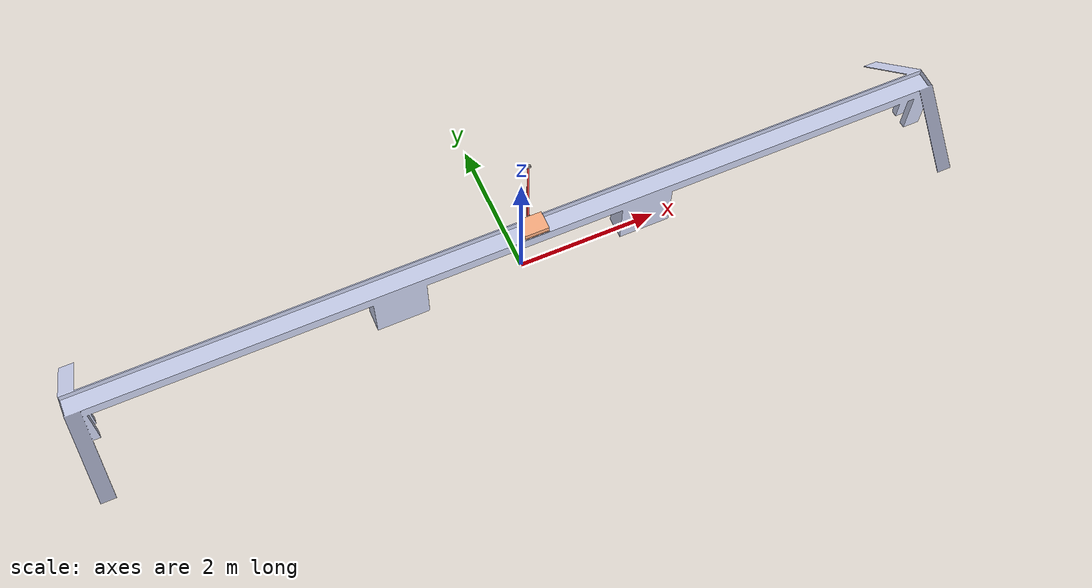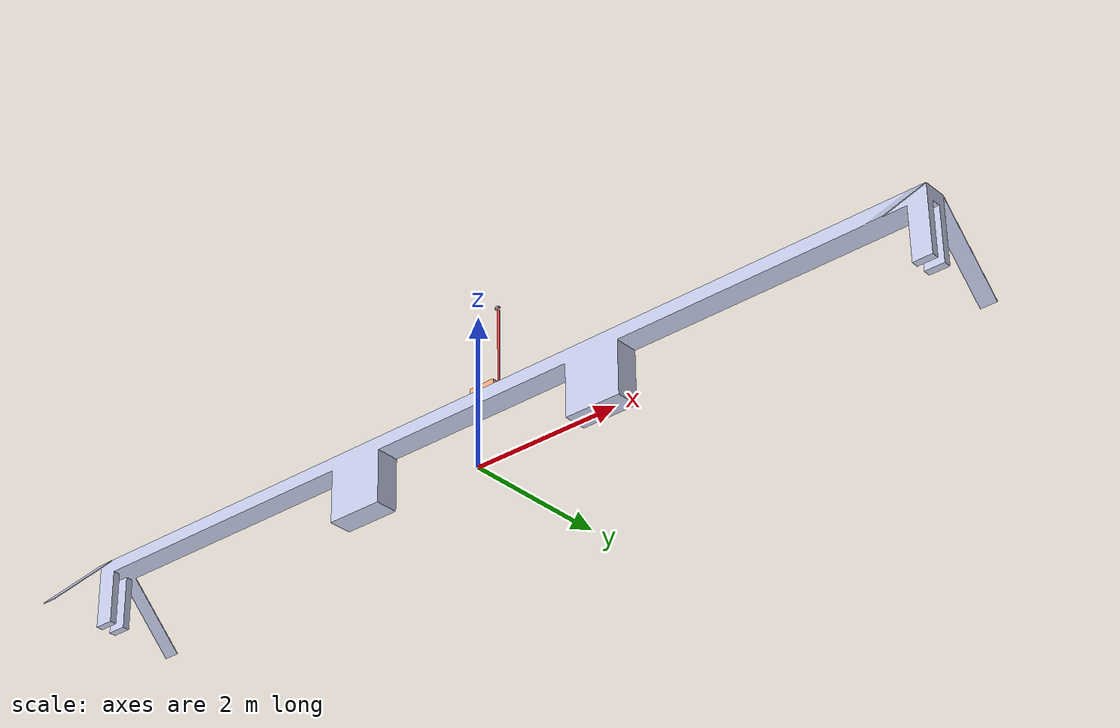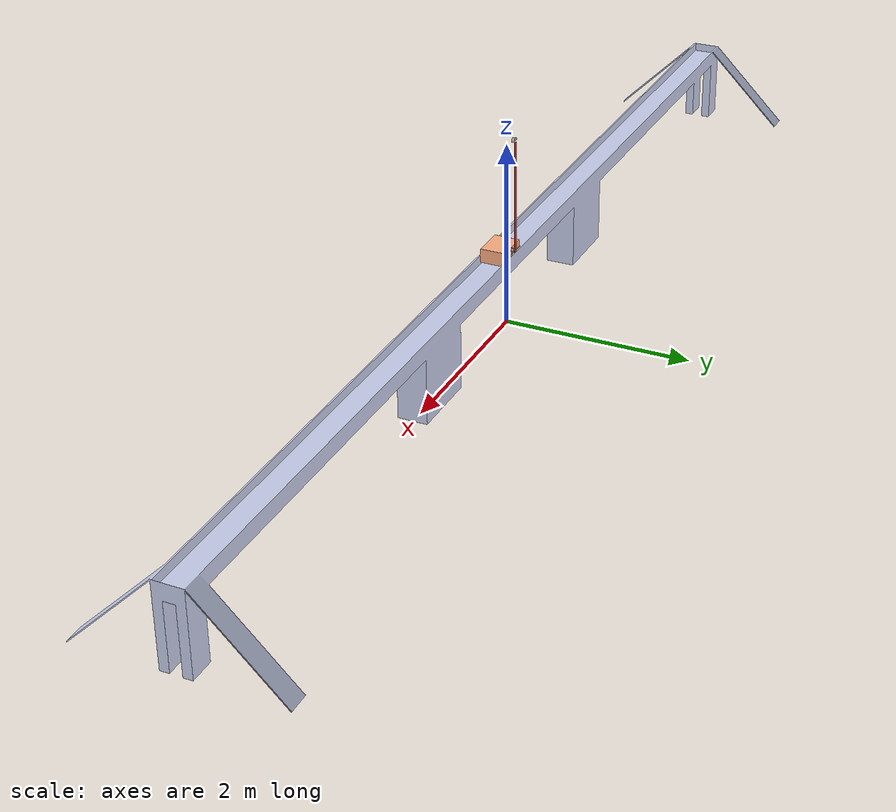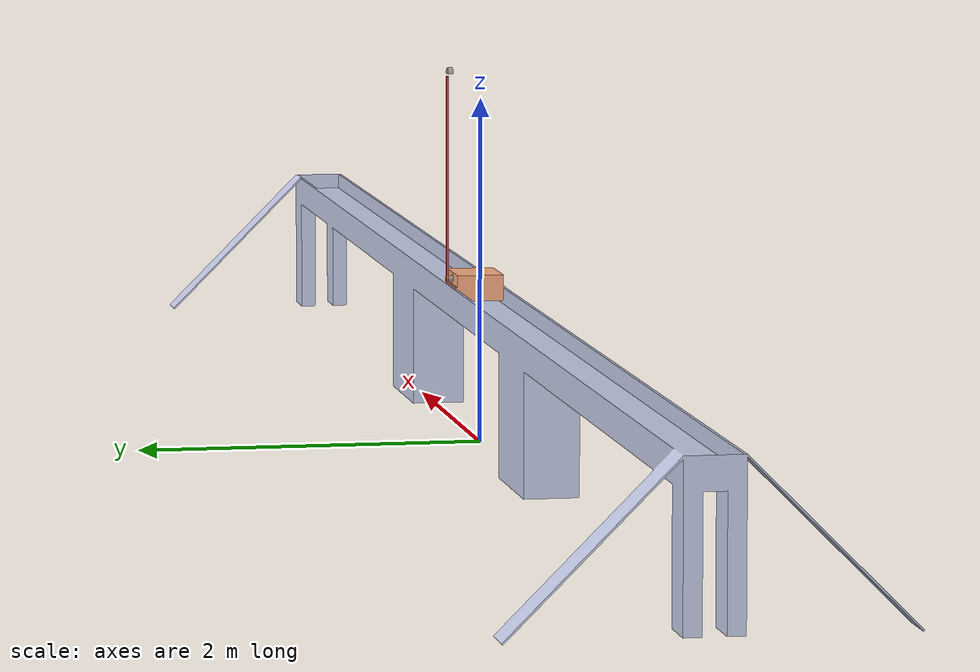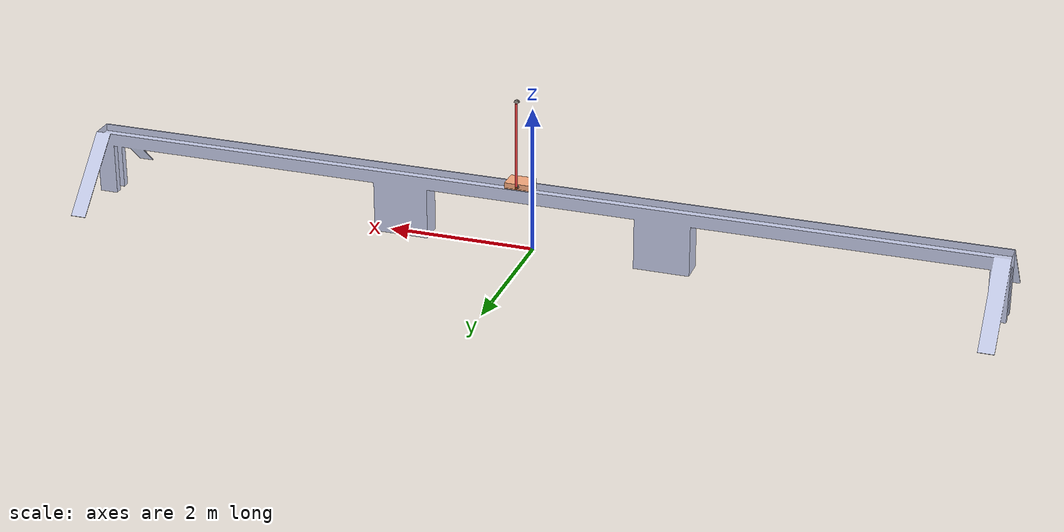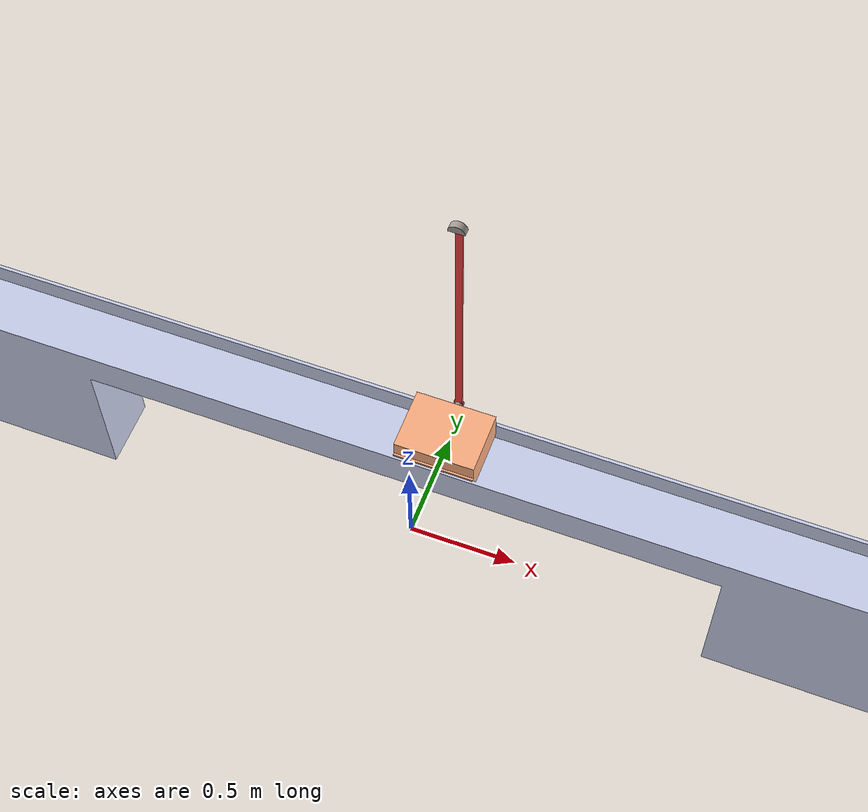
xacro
<?xml version="1.0" encoding="utf-8"?>

<robot
  name="pendulum" xmlns:xacro="http://ros.org/wiki/xacro">
  <xacro:include filename="$(find pendulum_description)/urdf/pendulum_gazebo.xacro" />
  <xacro:include filename="$(find pendulum_description)/urdf/pendulum_ros2_control.xacro" />

  <link name="base_footprint"/>

  <link
    name="base_link">
    <inertial>
      <origin
        xyz="6.36331745104857E-16 -0.226629032258064 -0.5"
        rpy="0 0 1.5708" />
      <mass
        value="135000.625" />
      <inertia
        ixx="120000.66933800235214"
        ixy="-8000.34457950766646E-16"
        ixz="1000.68593437821496E-14"
        iyy="121000.983188541667"
        iyz="-1000.53839894452422E-15"
        izz="128000.712191127352" />
    </inertial>
    <visual>
      <origin
        xyz="0 0 0"
        rpy="0 0 0" />
      <geometry>
        <mesh
          filename="file://$(find pendulum_description)/meshes/base_link.STL" />
      </geometry>
      <material
        name="">
        <color
          rgba="0.792156862745098 0.819607843137255 0.933333333333333 1" />
      </material>
    </visual>
    <collision>
      <origin
        xyz="0 0 0"
        rpy="0 0 0" />
      <geometry>
        <mesh
          filename="file://$(find pendulum_description)/meshes/base_link.STL" />
      </geometry>
    </collision>
  </link>

  <joint name="base_joint" type="fixed">
    <parent link="base_footprint"/>
    <child link="base_link" />
    <origin xyz="0 0 0.8" rpy="0 0 0"/>
  </joint>

  <link
    name="cart_link">
    <inertial>
      <origin
        xyz="0.164307811287998 0.0220987949533505 0.134063268805466"
        rpy="0 0 0" />
      <mass
        value="2.0" />
      <inertia
        ixx="0.0908570873245677"
        ixy="0.000609128603190611"
        ixz="-0.00131456683820482"
        iyy="0.185704807269383"
        iyz="0.000256709228024828"
        izz="0.128763787648094" />
    </inertial>
    <visual>
      <origin
        xyz="0 0 0"
        rpy="0 0 0" />
      <geometry>
        <mesh
          filename="file://$(find pendulum_description)/meshes/cart_link.STL" />
      </geometry>
      <material
        name="">
        <color
          rgba="1 0.690196078431373 0.509803921568627 1" />
      </material>
    </visual>
    <collision>
      <origin
        xyz="0 0 0"
        rpy="0 0 0" />
      <geometry>
        <mesh
          filename="file://$(find pendulum_description)/meshes/cart_link.STL" />
      </geometry>
    </collision>
  </link>
  <joint
    name="cart_joint"
    type="prismatic">
    <origin
      xyz="0 0.135 0.1"
      rpy="1.5708 0 0" />
    <parent
      link="base_link" />
    <child
      link="cart_link" />
    <axis
      xyz="1 0 0" />
    <limit
      lower="-6"
      upper="6"
      effort="10e4"
      velocity="10e3" />
    <dynamics damping='0.000001' friction='0.000001'/>
  </joint>
  <link
    name="wheel_shaft_link">
    <inertial>
      <origin
        xyz="0 -8.02982279374809E-05 0.12"
        rpy="0 0 0" />
      <mass
        value="0.0513755963547227" />
      <inertia
        ixx="0.000248479590131815"
        ixy="5.0821976835258E-21"
        ixz="-6.30936505837719E-21"
        iyy="0.00024849053286373"
        iyz="3.09069487800563E-20"
        izz="2.26317990207106E-07" />
    </inertial>
    <visual>
      <origin
        xyz="0 0 0"
        rpy="0 0 0" />
      <geometry>
        <mesh
          filename="file://$(find pendulum_description)/meshes/wheel_shaft_link.STL" />
      </geometry>
      <material
        name="">
        <color
          rgba="0.529411764705882 0.549019607843137 0.549019607843137 1" />
      </material>
    </visual>
    <collision>
      <origin
        xyz="0 0 0"
        rpy="0 0 0" />
      <geometry>
        <mesh
          filename="file://$(find pendulum_description)/meshes/wheel_shaft_link.STL" />
      </geometry>
    </collision>
  </link>
  <joint
    name="wheel_shaft_joint"
    type="continuous">
    <origin
      xyz="0.16755 -0.04 0.015"
      rpy="0 0 -0.11686" />
    <parent
      link="cart_link" />
    <child
      link="wheel_shaft_link" />
    <axis
      xyz="0 0 1" />
  </joint>
  <link
    name="wheel_link">
    <inertial>
      <origin
        xyz="-2.77555756156289E-17 7.27512519449469E-07 0.02"
        rpy="0 0 0" />
      <mass
        value="0.219522857968325" />
      <inertia
        ixx="0.000279345890325254"
        ixy="-2.03287907341032E-20"
        ixz="9.16740630550692E-20"
        iyy="0.000279345523578527"
        iyz="-2.89498400182015E-19"
        izz="0.000519872498983051" />
    </inertial>
    <visual>
      <origin
        xyz="0 0 0"
        rpy="0 0 0" />
      <geometry>
        <mesh
          filename="file://$(find pendulum_description)/meshes/wheel_link.STL" />
      </geometry>
      <material
        name="">
        <color
          rgba="1 1 1 1" />
      </material>
    </visual>
    <collision>
      <origin
        xyz="0 0 0"
        rpy="0 0 0" />
      <geometry>
        <mesh
          filename="file://$(find pendulum_description)/meshes/wheel_link.STL" />
      </geometry>
    </collision>
  </link>
  <joint
    name="wheel_joint"
    type="fixed">
    <origin
      xyz="0 0 0.1"
      rpy="0 0 0" />
    <parent
      link="wheel_shaft_link" />
    <child
      link="wheel_link" />

  </joint>
  <link
    name="pendulum_shaft_link">
    <inertial>
      <origin
        xyz="0 -9.4628805232283E-05 -0.011847861273337"
        rpy="0 0 -1.57" />
      <mass
        value="0.00274631062675936" />
      <inertia
        ixx="7.16968521355364E-07"
        ixy="1.6082318495927E-13"
        ixz="-1.54635176865287E-13"
        iyy="7.20225194163355E-07"
        iyz="-5.23183126573732E-09"
        izz="3.07208743781879E-07" />
    </inertial>
    <visual>
      <origin
        xyz="0 0 0"
        rpy="0 0 -1.5708" />
      <geometry>
        <mesh
          filename="file://$(find pendulum_description)/meshes/pendulum_shaft_link.STL" />
      </geometry>
      <material
        name="">
        <color
          rgba="0.650980392156863 0.619607843137255 0.588235294117647 1" />
      </material>
    </visual>
    <collision>
      <origin
        xyz="0 0 0"
        rpy="0 0 -1.5708" />
      <geometry>
        <mesh
          filename="file://$(find pendulum_description)/meshes/pendulum_shaft_link.STL" />
      </geometry>
    </collision>
  </link>
  <joint
    name="pendulum_shaft_joint"
    type="continuous">
    <origin
      xyz="0.167545451297984 0.0375 0"
      rpy="0 0 1.5708" />
    <parent
      link="cart_link" />
    <child
      link="pendulum_shaft_link" />
    <axis
      xyz="0 0 1" />
  </joint>
  <link
    name="pendulum_shaft">
    <inertial>
      <origin
        xyz="0.574 -0.0188 0"
        rpy="0 0 -1.57" />
      <mass
        value="0.031" />
      <inertia
        ixx="0.0030749"
        ixy="0.0014591"
        ixz="-1.4031E-18"
        iyy="0.00069572"
        iyz="2.9593E-18"
        izz="0.00377" />
    </inertial>
    <visual>
      <origin
        xyz="0.574 -0.0188 0"
        rpy="0 0 -1.57" />
      <geometry>
        <mesh
          filename="file://$(find pendulum_description)/meshes/pendulum_shaft.STL" />
      </geometry>
      <material
        name="">
        <color
          rgba="0.968627450980392 0.258823529411765 0.258823529411765 1" />
      </material>
    </visual>
    <collision>
      <origin
        xyz="0.574 -0.0188 0"
        rpy="0 0 -1.57" />
      <geometry>
        <mesh
          filename="file://$(find pendulum_description)/meshes/pendulum_shaft.STL" />
      </geometry>
    </collision>
  </link>
  <joint
    name="pendulum_joint"
    type="fixed">
    <origin
      xyz="0.0 0.00 -0.0369999999999996"
      rpy="0 0 2.7" />
    <parent
      link="pendulum_shaft_link" />
    <child
      link="pendulum_shaft" />
  </joint>

 <link
    name="tip_mass">
    <inertial>
      <origin
        xyz="-0.0 0.0 0.015"
        rpy="0 0 0" />
      <mass
        value="0.45" />
      <inertia
        ixx="7.3423E-05"
        ixy="1.7152E-19"
        ixz="1.2829E-21"
        iyy="0.00017431"
        iyz="-3.3349E-20"
        izz="0.00017915" />
    </inertial>
    <visual>
      <origin
        xyz="-0.0 0.0 0.015"
        rpy="0 0 0" />
      <geometry>
        <mesh
          filename="file://$(find pendulum_description)/meshes/tip_mass.STL" />
      </geometry>
      <material
        name="">
        <color
          rgba="0.65098 0.61961 0.58824 1" />
      </material>
    </visual>
    <collision>
      <origin
        xyz="-0.0 0.0 0.015"
        rpy="0 0 0" />
      <geometry>
        <mesh
          filename="file://$(find pendulum_description)/meshes/tip_mass.STL" />
      </geometry>
    </collision>
  </link>

  <joint
    name="tip_joint"
    type="fixed">
    <origin
      xyz="-1.08 -.515 -0.01"
      rpy="0 0 2" />
    <parent
      link="pendulum_shaft" />
    <child
      link="tip_mass" />
  </joint>

  <link name='imu_link'>
    <inertial>
      <origin xyz="-0.00552433659106688 0.000168210391520346 0.000514000497342681" rpy="0 0 0" />
      <mass value="0.000528415362211671" />
      <inertia ixx="1.46176048428261E-05" ixy="0" ixz="0"
               iyy="8.59662482954888E-05" iyz="0"
               izz="2.30279421279312E-05" />
    </inertial>
    <visual>
      <geometry>
        <box size="0.02 0.02 0.01"/>
      </geometry>
    </visual>
  </link>

  <joint
    name='imu_joint'
    type='fixed'>
    <origin xyz="0 0 0" rpy="0 0 0"/>
    <parent link="pendulum_shaft" />
    <child link="imu_link" />
  </joint>

</robot>
